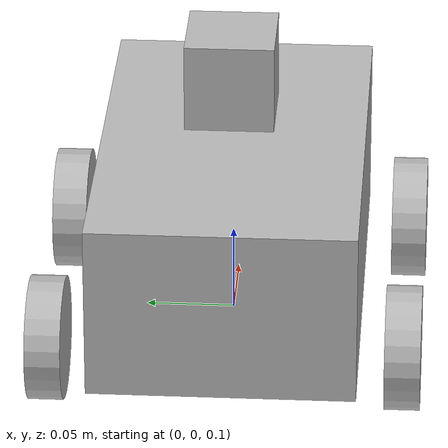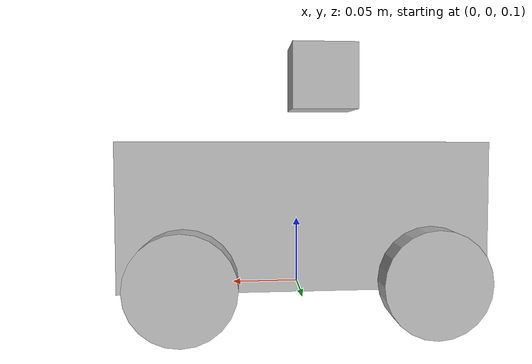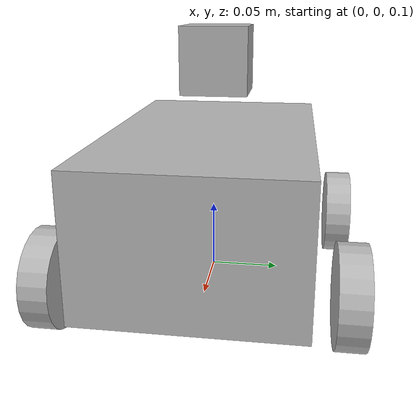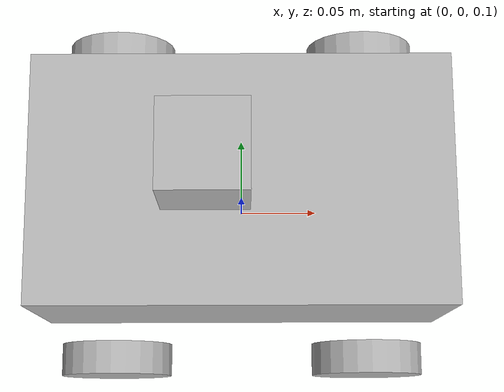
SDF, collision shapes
<?xml version="1.0" ?>
<sdf version="1.5">
  <model name="wheeltec_with_2d_lidar">

    <include>
      <uri>model://wheeltec</uri>
    </include>

    <link name="laser">
      <pose>-0.02 0 0.23 0 0 0</pose>
      <visual name="lidar_visual">
        <geometry>
          <cylinder>
            <radius>0.015</radius>
            <length>0.015</length>
          </cylinder>
        </geometry>
      </visual>
      <inertial>
        <mass>0.05</mass>        <!--质量-->
        <!--惯性标签，定义模型当前link的惯性矩，是一个对称正定3x3矩阵-->
        <inertia>
          <ixx>0.0025</ixx>
          <ixy>0</ixy>
          <ixz>0</ixz>
          <iyy>0.0025</iyy>
          <iyz>0</iyz>
          <izz>0.0042</izz>
        </inertia>
      </inertial>
      <collision name='collision'>
        <pose frame=''>0 0 0.03 0 0 0</pose>
        <geometry>
          <box>
            <size>0.05 0.05 0.05</size>
          </box>
        </geometry>
        <surface>
          <contact>
            <ode>
              <min_depth>0.001</min_depth>
              <max_vel>0</max_vel>
            </ode>
          </contact>
          <friction>
            <ode/>
          </friction>
        </surface>
      </collision>

      <!-- Add a ray sensor, and give it a name -->
      <sensor type="ray" name="head_hokuyo_sensor">
        <pose>0 0 0 0 0 0</pose>
        <visualize>false</visualize>
        <update_rate>10</update_rate>
        <ray>
          <scan>
            <horizontal>
              <samples>1000</samples>
              <resolution>1</resolution>
              <min_angle>-3.14</min_angle>
              <max_angle>3.14</max_angle>
            </horizontal>
          </scan>
          <range>
            <min>0.10</min>
            <max>10.0</max>
            <resolution>0.01</resolution>
          </range>
          <noise>
            <type>gaussian</type>
            <mean>0.0</mean>
            <stddev>0.01</stddev>
          </noise>
        </ray>
        <plugin name="gazebo_ros_head_hokuyo_controller" filename="libgazebo_ros_laser.so">
          <topicName>/ugv1/scan</topicName>
          <frameName>/ugv1/base_link</frameName>
        </plugin>

      </sensor>
    </link>

    <joint name="2Dlidar_joint" type="fixed">
      <child>laser</child>
      <parent>wheeltec::base_link</parent>
      <axis>
        <xyz>0 0 1</xyz>
        <limit>
          <upper>0</upper>
          <lower>0</lower>
        </limit>
      </axis>
    </joint>

  </model>
</sdf>

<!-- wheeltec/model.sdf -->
<sdf version="1.5">
  <model name="wheeltec">
    <link name="base_link">
      <pose>0 0 0.16 0 0 0</pose>
      <inertial>
        <mass>2</mass>
        <inertia>
          <ixx>0.028819942</ixx>
          <iyy>0.047333716</iyy>
          <izz>0.054201740</izz>
          <ixy>0</ixy>
          <ixz>0</ixz>
          <iyz>0</iyz>
        </inertia>
      </inertial>
      <collision name="collision">
        <pose>0 0 0 0 0 0</pose>
        <geometry>
          <box>
            <size>0.25 0.15 0.1</size>
          </box>
        </geometry>
      </collision>
      <visual name="visual">
        <pose>0.045 0 -0.05 1.57 0 0</pose>
        <geometry>
          <mesh>
            <uri>model://wheeltec/meshes/body.dae</uri>
          </mesh>
        </geometry>
      </visual>
    </link>

    <link name="right_front_wheel">
      <pose>0.08 -0.1 0.12 1.57 0 0</pose>
      <inertial>
        <mass>0.3844</mass>
        <inertia>
          <ixx>0.000480000</ixx>
          <iyy>0.000480000</iyy>
          <izz>0.000480000</izz>
          <ixy>0</ixy>
          <ixz>0</ixz>
          <iyz>0</iyz>
        </inertia>
      </inertial>
      <collision name='right_front_wheel_collision'>
        <pose>0 0 0 0 0 0</pose>
        <geometry>
          <cylinder>
            <length>0.02</length>
            <radius>0.035</radius>
          </cylinder>
        </geometry>
        <surface>
          <friction>
            <ode>
              <mu>0.5</mu>
              <mu2>0.3</mu2>
              <slip1>0.0</slip1>
              <slip2>0.0</slip2>
            </ode>
          </friction>
          <contact>
            <ode>
              <min_depth>0.001</min_depth>
            </ode>
          </contact>
        </surface>
      </collision>
      <visual name="visual">
        <pose>-0.035 0.015 -0.1 3.14 0 0</pose>
        <geometry>
          <mesh>
            <uri>model://wheeltec/meshes/front.dae</uri>
          </mesh>
        </geometry>
      </visual>
    </link>

    <link name="right_after_wheel">
      <pose>-0.08 -0.1 0.12 1.57 0 0</pose>
      <inertial>
        <mass>0.3844</mass>
        <inertia>
          <ixx>0.000480000</ixx>
          <iyy>0.000480000</iyy>
          <izz>0.000480000</izz>
          <ixy>0</ixy>
          <ixz>0</ixz>
          <iyz>0</iyz>
        </inertia>
      </inertial>
      <collision name='right_after_wheel_collision'>
        <pose>0 0 0 0 0 0</pose>
        <geometry>
          <cylinder>
            <length>0.02</length>
            <radius>0.035</radius>
          </cylinder>
        </geometry>
        <surface>
          <friction>
            <ode>
              <mu>0.5</mu>
              <mu2>0.3</mu2>
              <slip1>0.0</slip1>
              <slip2>0.0</slip2>
            </ode>
          </friction>
          <contact>
            <ode>
              <min_depth>0.001</min_depth>
            </ode>
          </contact>
        </surface>
      </collision>
      <visual name="visual">
        <pose>-0.035 0.015 -0.1 3.14 0 0</pose>
        <geometry>
          <mesh>
            <uri>model://wheeltec/meshes/front.dae</uri>
          </mesh>
        </geometry>
      </visual>
    </link>

    <link name="left_front_wheel">
      <pose>0.08 0.1 0.12 1.57 0 0</pose>
      <inertial>
        <mass>0.3844</mass>
        <inertia>
          <ixx>0.000480000</ixx>
          <iyy>0.000480000</iyy>
          <izz>0.000480000</izz>
          <ixy>0</ixy>
          <ixz>0</ixz>
          <iyz>0</iyz>
        </inertia>
      </inertial>
      <collision name='left_front_wheel_collision'>
        <pose>0 0 0 0 0 0</pose>
        <geometry>
          <cylinder>
            <length>0.02</length>
            <radius>0.035</radius>
          </cylinder>
        </geometry>
        <surface>
          <friction>
            <ode>
              <mu>0.5</mu>
              <mu2>0.3</mu2>
              <slip1>0.0</slip1>
              <slip2>0.0</slip2>
            </ode>
          </friction>
          <contact>
            <ode>
              <min_depth>0.001</min_depth>
            </ode>
          </contact>
        </surface>
      </collision>
      <visual name="visual">
        <pose>-0.035 -0.015 0.1 0 0 0</pose>
        <geometry>
          <mesh>
            <uri>model://wheeltec/meshes/front.dae</uri>
          </mesh>
        </geometry>
      </visual>
    </link>

    <link name="left_after_wheel">
      <pose>-0.08 0.1 0.12 1.57 0 0</pose>
      <inertial>
        <mass>0.3844</mass>
        <inertia>
          <ixx>0.000480000</ixx>
          <iyy>0.000480000</iyy>
          <izz>0.000480000</izz>
          <ixy>0</ixy>
          <ixz>0</ixz>
          <iyz>0</iyz>
        </inertia>
      </inertial>
      <collision name='left_after_wheel_collision'>
        <pose>0 0 0 0 0 0</pose>
        <geometry>
          <cylinder>
            <length>0.02</length>
            <radius>0.035</radius>
          </cylinder>
        </geometry>
        <surface>
          <friction>
            <ode>
              <mu>0.5</mu>
              <mu2>0.3</mu2>
              <slip1>0.0</slip1>
              <slip2>0.0</slip2>
            </ode>
          </friction>
          <contact>
            <ode>
              <min_depth>0.001</min_depth>
            </ode>
          </contact>
        </surface>
      </collision>
      <visual name="visual">
        <pose>-0.035 -0.015 0.1 0 0 0</pose>
        <geometry>
          <mesh>
            <uri>model://wheeltec/meshes/front.dae</uri>
          </mesh>
        </geometry>
      </visual>
    </link>

    <joint type="revolute" name="right_front_wheel_joint">
      <child>right_front_wheel</child>
      <parent>base_link</parent>
      <axis>
        <xyz>0 1 0</xyz>
        <limit>
          <lower>-1e+16</lower>
          <upper>1e+16</upper>
        </limit>
        <dynamics>
          <spring_reference>0</spring_reference>
          <spring_stiffness>0</spring_stiffness>
        </dynamics>
        <use_parent_model_frame>1</use_parent_model_frame>
      </axis>
    </joint>

    <joint type="revolute" name="right_after_wheel_joint">
      <child>right_after_wheel</child>
      <parent>base_link</parent>
      <axis>
        <xyz>0 1 0</xyz>
        <limit>
          <lower>-1e+16</lower>
          <upper>1e+16</upper>
        </limit>
        <dynamics>
          <spring_reference>0</spring_reference>
          <spring_stiffness>0</spring_stiffness>
        </dynamics>
        <use_parent_model_frame>1</use_parent_model_frame>
      </axis>
    </joint>

    <joint type="revolute" name="left_front_wheel_joint">
      <child>left_front_wheel</child>
      <parent>base_link</parent>
      <axis>
        <xyz>0 1 0</xyz>
        <limit>
          <lower>-1e+16</lower>
          <upper>1e+16</upper>
        </limit>
        <dynamics>
          <spring_reference>0</spring_reference>
          <spring_stiffness>0</spring_stiffness>
        </dynamics>
        <use_parent_model_frame>1</use_parent_model_frame>
      </axis>
    </joint>

    <joint type="revolute" name="left_after_wheel_joint">
      <child>left_after_wheel</child>
      <parent>base_link</parent>
      <axis>
        <xyz>0 1 0</xyz>
        <limit>
          <lower>-1e+16</lower>
          <upper>1e+16</upper>
        </limit>
        <dynamics>
          <spring_reference>0</spring_reference>
          <spring_stiffness>0</spring_stiffness>
        </dynamics>
        <use_parent_model_frame>1</use_parent_model_frame>
      </axis>
    </joint>

    <plugin name="mecanum_controller" filename="libgazebo_ros_planar_move.so">
            <updateRate>100.0</updateRate>
            <cmdTimeout>0.01</cmdTimeout>
            <leftFrontJoint>left_front_wheel_joint</leftFrontJoint>
            <rightFrontJoint>right_front_wheel_joint</rightFrontJoint>
            <leftRearJoint>left_after_wheel_joint</leftRearJoint>
            <rightRearJoint>right_after_wheel_joint</rightRearJoint>
            <wheelSeparation>0.1</wheelSeparation>
            <wheelDiameter>0.07</wheelDiameter>
            <torque>2</torque>
            <commandTopic>cmd_vel</commandTopic>
            <odometryFrame>world</odometryFrame>
            <odometryTopic>odom</odometryTopic>
            <robotBaseFrame>base_link</robotBaseFrame>
            <broadcastTF>0</broadcastTF>
            <publishTf>0</publishTf>
            <publishWheelJointState>true</publishWheelJointState>
            <alwaysOn>true</alwaysOn>
        </plugin>

  </model>
</sdf>
